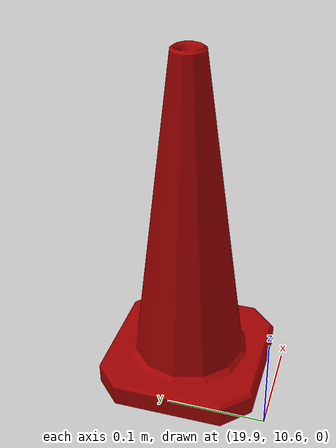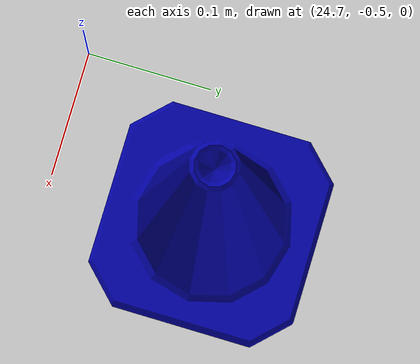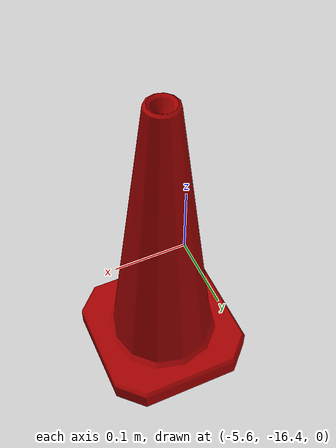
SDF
<sdf version="1.6">
 <world name="default">
  <include><uri>model://sun</uri></include>
  <include><uri>model://ground_plane</uri></include>
  <scene><shadows>false</shadows><grid>false</grid></scene>
  <model name="Construction_Cone_id_1">
   <link name="link">
    <inertial>
     <inertia><ixx>1</ixx><ixy>0</ixy><ixz>0</ixz><iyy>1</iyy><iyz>0</iyz><izz>1</izz></inertia>
     <mass>1</mass>
    </inertial>
    <visual name="visual">
     <geometry>
      <mesh>
       <scale>3.27166 3.27166 3.27166</scale>
       <uri>model://construction_cone/meshes/construction_cone.dae</uri>
      </mesh>
     </geometry>
     <material>
      <shader type="pixel"><normal_map>__default__</normal_map></shader>
      <ambient>0.643 0 0 1</ambient>
      <diffuse>0.643 0 0 1</diffuse>
      <specular>0.643 0 0 1</specular>
      <emissive>0 0 0 1</emissive>
     </material>
    </visual>
    <collision name="collision">
     <geometry>
      <mesh>
       <uri>model://construction_cone/meshes/construction_cone.dae</uri>
       <scale>3.27166 3.27166 3.27166</scale>
      </mesh>
     </geometry>
     <surface>
      <friction>
       <ode><mu>1</mu><mu2>1</mu2><fdir1>0 0 0</fdir1><slip1>0</slip1><slip2>0</slip2></ode>
       <torsional>
        <coefficient>1</coefficient>
        <patch_radius>0</patch_radius>
        <surface_radius>0</surface_radius>
        <use_patch_radius>1</use_patch_radius>
        <ode><slip>0</slip></ode>
       </torsional>
      </friction>
      <bounce><restitution_coefficient>0</restitution_coefficient><threshold>1e+06</threshold></bounce>
      <contact>
       <collide_without_contact>0</collide_without_contact>
       <collide_without_contact_bitmask>1</collide_without_contact_bitmask>
       <collide_bitmask>1</collide_bitmask>
       <ode>
        <soft_cfm>0</soft_cfm>
        <soft_erp>0.2</soft_erp>
        <kp>1e+13</kp>
        <kd>1</kd>
        <max_vel>0.01</max_vel>
        <min_depth>0</min_depth>
       </ode>
       <bullet>
        <split_impulse>1</split_impulse>
        <split_impulse_penetration_threshold>-0.01</split_impulse_penetration_threshold>
        <soft_cfm>0</soft_cfm>
        <soft_erp>0.2</soft_erp>
        <kp>1e+13</kp>
        <kd>1</kd>
       </bullet>
      </contact>
     </surface>
    </collision>
   </link>
   <static>0</static>
   <pose>19.964537 10.696421 0 0 -0 0</pose>
  </model>
  <model name="Construction_Cone_id_2">
   <link name="link">
    <inertial>
     <inertia><ixx>1</ixx><ixy>0</ixy><ixz>0</ixz><iyy>1</iyy><iyz>0</iyz><izz>1</izz></inertia>
     <mass>1</mass>
    </inertial>
    <visual name="visual">
     <geometry>
      <mesh>
       <scale>3.27166 3.27166 3.27166</scale>
       <uri>model://construction_cone/meshes/construction_cone.dae</uri>
      </mesh>
     </geometry>
     <material>
      <shader type="pixel"><normal_map>__default__</normal_map></shader>
      <ambient>0 0 0.643 1</ambient>
      <diffuse>0 0 0.643 1</diffuse>
      <specular>0 0 0.643 1</specular>
      <emissive>0 0 0 1</emissive>
     </material>
    </visual>
    <collision name="collision">
     <geometry>
      <mesh>
       <uri>model://construction_cone/meshes/construction_cone.dae</uri>
       <scale>3.27166 3.27166 3.27166</scale>
      </mesh>
     </geometry>
     <surface>
      <friction>
       <ode><mu>1</mu><mu2>1</mu2><fdir1>0 0 0</fdir1><slip1>0</slip1><slip2>0</slip2></ode>
       <torsional>
        <coefficient>1</coefficient>
        <patch_radius>0</patch_radius>
        <surface_radius>0</surface_radius>
        <use_patch_radius>1</use_patch_radius>
        <ode><slip>0</slip></ode>
       </torsional>
      </friction>
      <bounce><restitution_coefficient>0</restitution_coefficient><threshold>1e+06</threshold></bounce>
      <contact>
       <collide_without_contact>0</collide_without_contact>
       <collide_without_contact_bitmask>1</collide_without_contact_bitmask>
       <collide_bitmask>1</collide_bitmask>
       <ode>
        <soft_cfm>0</soft_cfm>
        <soft_erp>0.2</soft_erp>
        <kp>1e+13</kp>
        <kd>1</kd>
        <max_vel>0.01</max_vel>
        <min_depth>0</min_depth>
       </ode>
       <bullet>
        <split_impulse>1</split_impulse>
        <split_impulse_penetration_threshold>-0.01</split_impulse_penetration_threshold>
        <soft_cfm>0</soft_cfm>
        <soft_erp>0.2</soft_erp>
        <kp>1e+13</kp>
        <kd>1</kd>
       </bullet>
      </contact>
     </surface>
    </collision>
   </link>
   <static>0</static>
   <pose>24.802801 -0.369133 0 0 -0 0</pose>
  </model>
  <model name="Construction_Cone_id_3">
   <link name="link">
    <inertial>
     <inertia><ixx>1</ixx><ixy>0</ixy><ixz>0</ixz><iyy>1</iyy><iyz>0</iyz><izz>1</izz></inertia>
     <mass>1</mass>
    </inertial>
    <visual name="visual">
     <geometry>
      <mesh>
       <scale>3.27166 3.27166 3.27166</scale>
       <uri>model://construction_cone/meshes/construction_cone.dae</uri>
      </mesh>
     </geometry>
     <material>
      <shader type="pixel"><normal_map>__default__</normal_map></shader>
      <ambient>0.643 0 0 1</ambient>
      <diffuse>0.643 0 0 1</diffuse>
      <specular>0.643 0 0 1</specular>
      <emissive>0 0 0 1</emissive>
     </material>
    </visual>
    <collision name="collision">
     <geometry>
      <mesh>
       <uri>model://construction_cone/meshes/construction_cone.dae</uri>
       <scale>3.27166 3.27166 3.27166</scale>
      </mesh>
     </geometry>
     <surface>
      <friction>
       <ode><mu>1</mu><mu2>1</mu2><fdir1>0 0 0</fdir1><slip1>0</slip1><slip2>0</slip2></ode>
       <torsional>
        <coefficient>1</coefficient>
        <patch_radius>0</patch_radius>
        <surface_radius>0</surface_radius>
        <use_patch_radius>1</use_patch_radius>
        <ode><slip>0</slip></ode>
       </torsional>
      </friction>
      <bounce><restitution_coefficient>0</restitution_coefficient><threshold>1e+06</threshold></bounce>
      <contact>
       <collide_without_contact>0</collide_without_contact>
       <collide_without_contact_bitmask>1</collide_without_contact_bitmask>
       <collide_bitmask>1</collide_bitmask>
       <ode>
        <soft_cfm>0</soft_cfm>
        <soft_erp>0.2</soft_erp>
        <kp>1e+13</kp>
        <kd>1</kd>
        <max_vel>0.01</max_vel>
        <min_depth>0</min_depth>
       </ode>
       <bullet>
        <split_impulse>1</split_impulse>
        <split_impulse_penetration_threshold>-0.01</split_impulse_penetration_threshold>
        <soft_cfm>0</soft_cfm>
        <soft_erp>0.2</soft_erp>
        <kp>1e+13</kp>
        <kd>1</kd>
       </bullet>
      </contact>
     </surface>
    </collision>
   </link>
   <static>0</static>
   <pose>-5.516354 -16.286877 0 0 -0 0</pose>
  </model>
  <model name="Construction_Cone_id_4">
   <link name="link">
    <inertial>
     <inertia><ixx>1</ixx><ixy>0</ixy><ixz>0</ixz><iyy>1</iyy><iyz>0</iyz><izz>1</izz></inertia>
     <mass>1</mass>
    </inertial>
    <visual name="visual">
     <geometry>
      <mesh>
       <scale>3.27166 3.27166 3.27166</scale>
       <uri>model://construction_cone/meshes/construction_cone.dae</uri>
      </mesh>
     </geometry>
     <material>
      <shader type="pixel"><normal_map>__default__</normal_map></shader>
      <ambient>0 0 0.643 1</ambient>
      <diffuse>0 0 0.643 1</diffuse>
      <specular>0 0 0.643 1</specular>
      <emissive>0 0 0 1</emissive>
     </material>
    </visual>
    <collision name="collision">
     <geometry>
      <mesh>
       <uri>model://construction_cone/meshes/construction_cone.dae</uri>
       <scale>3.27166 3.27166 3.27166</scale>
      </mesh>
     </geometry>
     <surface>
      <friction>
       <ode><mu>1</mu><mu2>1</mu2><fdir1>0 0 0</fdir1><slip1>0</slip1><slip2>0</slip2></ode>
       <torsional>
        <coefficient>1</coefficient>
        <patch_radius>0</patch_radius>
        <surface_radius>0</surface_radius>
        <use_patch_radius>1</use_patch_radius>
        <ode><slip>0</slip></ode>
       </torsional>
      </friction>
      <bounce><restitution_coefficient>0</restitution_coefficient><threshold>1e+06</threshold></bounce>
      <contact>
       <collide_without_contact>0</collide_without_contact>
       <collide_without_contact_bitmask>1</collide_without_contact_bitmask>
       <collide_bitmask>1</collide_bitmask>
       <ode>
        <soft_cfm>0</soft_cfm>
        <soft_erp>0.2</soft_erp>
        <kp>1e+13</kp>
        <kd>1</kd>
        <max_vel>0.01</max_vel>
        <min_depth>0</min_depth>
       </ode>
       <bullet>
        <split_impulse>1</split_impulse>
        <split_impulse_penetration_threshold>-0.01</split_impulse_penetration_threshold>
        <soft_cfm>0</soft_cfm>
        <soft_erp>0.2</soft_erp>
        <kp>1e+13</kp>
        <kd>1</kd>
       </bullet>
      </contact>
     </surface>
    </collision>
   </link>
   <static>0</static>
   <pose>-13.7244 4.257628 0 0 -0 0</pose>
  </model>
  <model name="Construction_Cone_id_5">
   <link name="link">
    <inertial>
     <inertia><ixx>1</ixx><ixy>0</ixy><ixz>0</ixz><iyy>1</iyy><iyz>0</iyz><izz>1</izz></inertia>
     <mass>1</mass>
    </inertial>
    <visual name="visual">
     <geometry>
      <mesh>
       <scale>3.27166 3.27166 3.27166</scale>
       <uri>model://construction_cone/meshes/construction_cone.dae</uri>
      </mesh>
     </geometry>
     <material>
      <shader type="pixel"><normal_map>__default__</normal_map></shader>
      <ambient>0.643 0 0 1</ambient>
      <diffuse>0.643 0 0 1</diffuse>
      <specular>0.643 0 0 1</specular>
      <emissive>0 0 0 1</emissive>
     </material>
    </visual>
    <collision name="collision">
     <geometry>
      <mesh>
       <uri>model://construction_cone/meshes/construction_cone.dae</uri>
       <scale>3.27166 3.27166 3.27166</scale>
      </mesh>
     </geometry>
     <surface>
      <friction>
       <ode><mu>1</mu><mu2>1</mu2><fdir1>0 0 0</fdir1><slip1>0</slip1><slip2>0</slip2></ode>
       <torsional>
        <coefficient>1</coefficient>
        <patch_radius>0</patch_radius>
        <surface_radius>0</surface_radius>
        <use_patch_radius>1</use_patch_radius>
        <ode><slip>0</slip></ode>
       </torsional>
      </friction>
      <bounce><restitution_coefficient>0</restitution_coefficient><threshold>1e+06</threshold></bounce>
      <contact>
       <collide_without_contact>0</collide_without_contact>
       <collide_without_contact_bitmask>1</collide_without_contact_bitmask>
       <collide_bitmask>1</collide_bitmask>
       <ode>
        <soft_cfm>0</soft_cfm>
        <soft_erp>0.2</soft_erp>
        <kp>1e+13</kp>
        <kd>1</kd>
        <max_vel>0.01</max_vel>
        <min_depth>0</min_depth>
       </ode>
       <bullet>
        <split_impulse>1</split_impulse>
        <split_impulse_penetration_threshold>-0.01</split_impulse_penetration_threshold>
        <soft_cfm>0</soft_cfm>
        <soft_erp>0.2</soft_erp>
        <kp>1e+13</kp>
        <kd>1</kd>
       </bullet>
      </contact>
     </surface>
    </collision>
   </link>
   <static>0</static>
   <pose>10.395211 7.784442 0 0 -0 0</pose>
  </model>
  <physics type="ode">
   <real_time_update_rate>1000.0</real_time_update_rate>
   <max_step_size>0.001</max_step_size>
   <real_time_factor>1</real_time_factor>
   <ode>
    <solver>
     <type>quick</type>
     <iters>150</iters>
     <precon_iters>0</precon_iters>
     <sor>1.400000</sor>
     <use_dynamic_moi_rescaling>1</use_dynamic_moi_rescaling>
    </solver>
    <constraints>
     <cfm>0.00001</cfm>
     <erp>0.2</erp>
     <contact_max_correcting_vel>2000.000000</contact_max_correcting_vel>
     <contact_surface_layer>0.01000</contact_surface_layer>
    </constraints>
   </ode>
  </physics>
  <plugin name="gazebo_ros_init" filename="libgazebo_ros_init.so"><robotNamespace>/</robotNamespace></plugin>
  <plugin name="gazebo_ros_control" filename="libgazebo_ros_control.so">
   <robotNamespace>/</robotNamespace>
  </plugin>
 </world>
</sdf>
